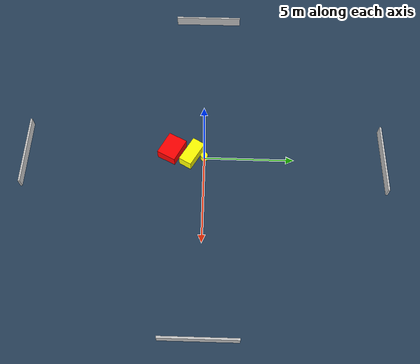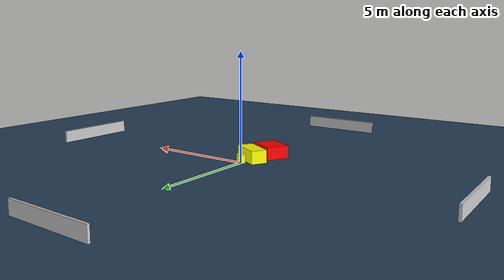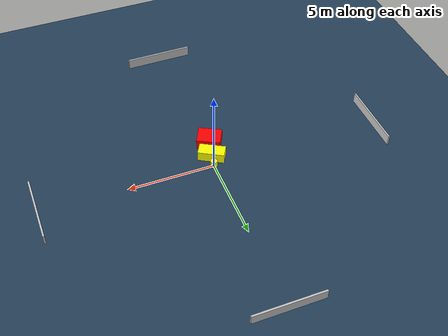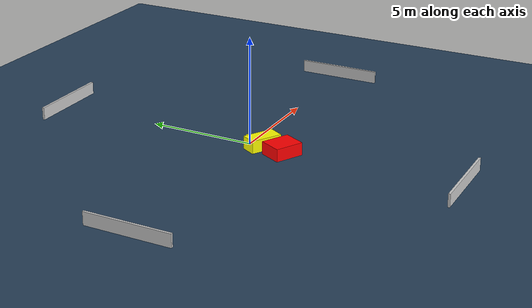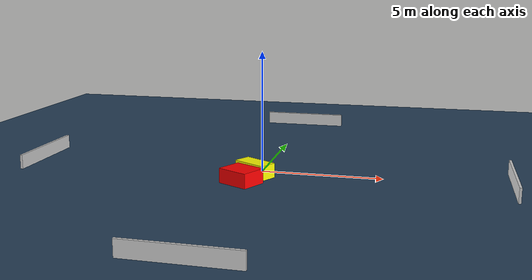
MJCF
<?xml version="1.0" ?>
<mujoco model="generated_environment">
  <option timestep="0.01" integrator="RK4" cone="elliptic"/>
  <default>
    <geom density="1"/>
  </default>
  <asset>
    <texture builtin="gradient" height="3072" name="skybox" rgb1="0.3 0.5 0.7" rgb2="0 0 0" type="skybox" width="512"/>
    <texture builtin="checker" height="300" name="groundplane" rgb1="0.2 0.3 0.4" rgb2="0.1 0.2 0.3" type="2d" width="300"/>
    <material name="groundplane" reflectance="0.2" texrepeat="5 5" texture="groundplane"/>
  </asset>
  <worldbody>
    <light dir="0 0 -1" directional="true" pos="0 0 1.5"/>
    <geom condim="3" friction="0.5 0.005 0.001" material="groundplane" name="floor" pos="0 0 0" size="0 0 0.05" type="plane"/>
    <body name="walls">
      <geom name="wall_1" condim="4" pos="-10.0 0.0 0.3" rgba="0.800000011920929 0.800000011920929 0.800000011920929 1.0" size="0.05 2.0 0.3" type="box"/>
      <geom name="wall_2" condim="4" pos="10.0 0.0 0.3" rgba="0.800000011920929 0.800000011920929 0.800000011920929 1.0" size="0.05 2.0 0.3" type="box"/>
      <geom name="wall_3" condim="4" pos="0.0 -10.0 0.3" rgba="0.800000011920929 0.800000011920929 0.800000011920929 1.0" size="2.0 0.05 0.3" type="box"/>
      <geom name="wall_4" condim="4" pos="0.0 10.0 0.3" rgba="0.800000011920929 0.800000011920929 0.800000011920929 1.0" size="2.0 0.05 0.3" type="box"/>
    </body>
    <body name="robot">
      <joint name="joint_x" type="slide" pos="0 0 0" axis="1 0 0"/>
      <joint name="joint_y" type="slide" pos="0 0 0" axis="0 1 0"/>
      <geom name="robot" type="cylinder" pos="0.0 0.0 0.2" size="0.2 0.2 0.0" mass="5.0" friction="1.0 0.005 0.0001" condim="4" rgba="1.0 1.0 0.0 1.0"/>
    </body>
    <body name="obstacle_1_movable">
      <geom name="obstacle_1_movable" condim="4" pos="-0.1333405267648739 -0.6863059121182158 0.3" euler="0 0 330.127761961236" friction="0.0 0.005 0.001" rgba="1.0 1.0 0.0 1.0" size="0.7560899690654588 0.3716043141507683 0.3" type="box" mass="0.1"/>
      <joint type="free"/>
    </body>
    <body name="obstacle_2_static">
      <geom name="obstacle_2_static" condim="4" pos="-0.41127706547684534 -1.8168815121387094 0.3" euler="0 0 152.53356961864057" friction="0.0 0.005 0.001" rgba="1.0 0.0 0.0 1.0" size="0.6819671444361666 0.5468045365866979 0.3" type="box"/>
    </body>
  </worldbody>
  <actuator>
    <motor name="actuator_x" joint="joint_x" gear="1" ctrlrange="-1 1"/>
    <motor name="actuator_y" joint="joint_y" gear="1" ctrlrange="-1 1"/>
  </actuator>
</mujoco>
